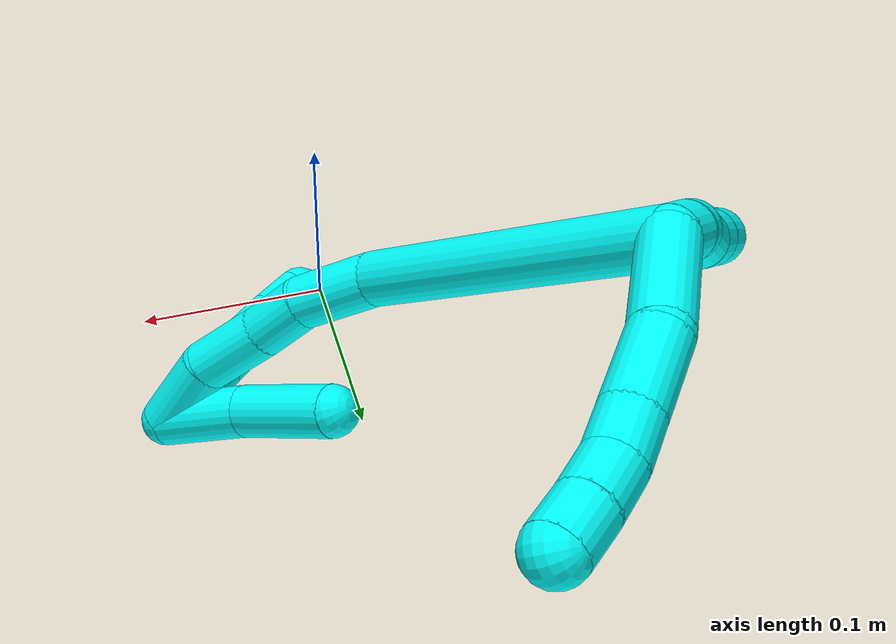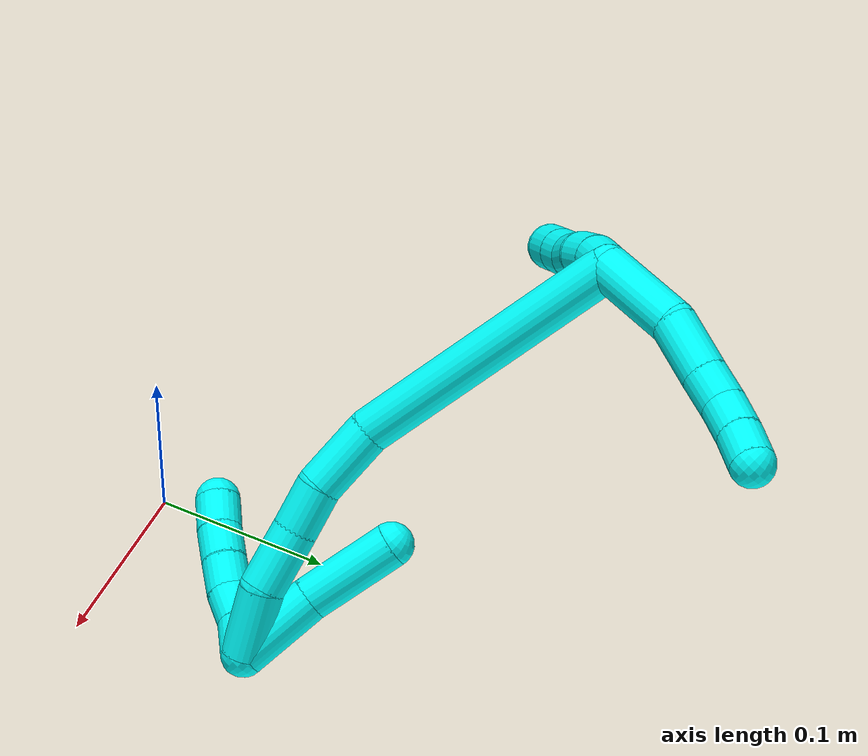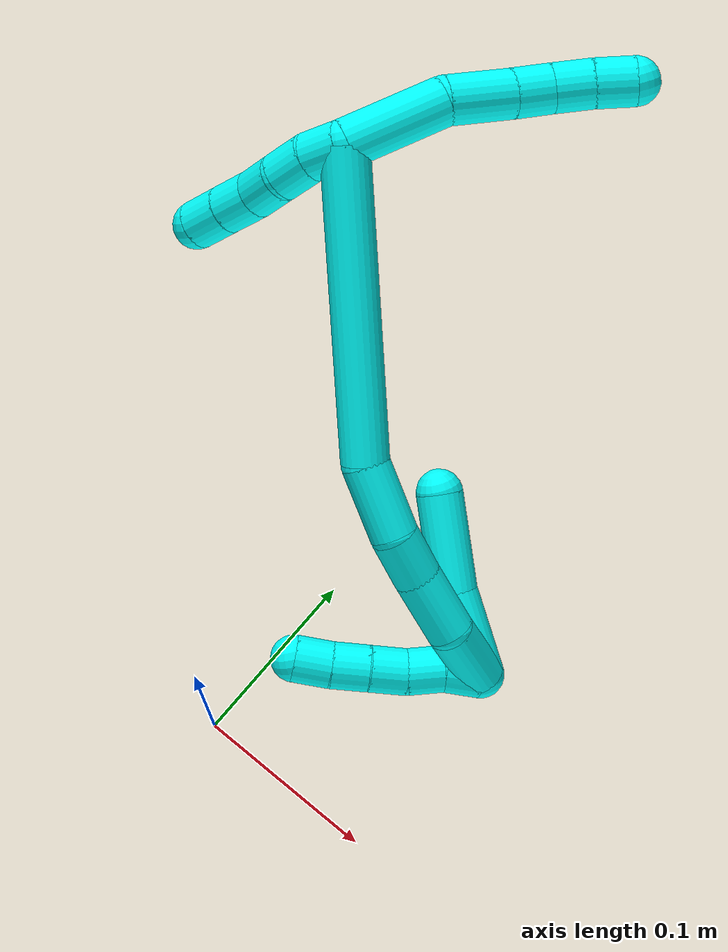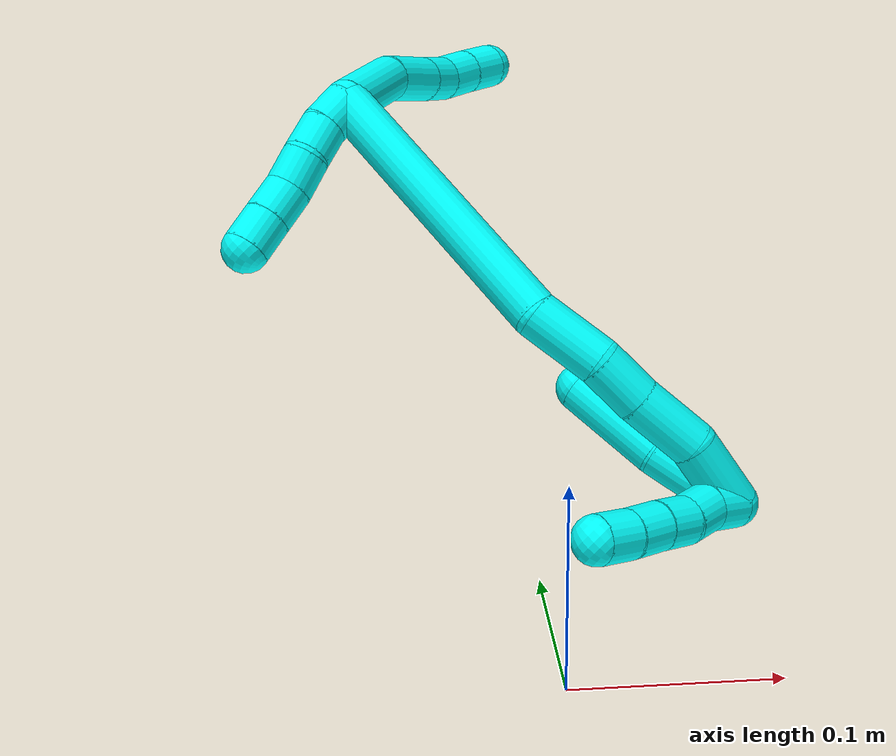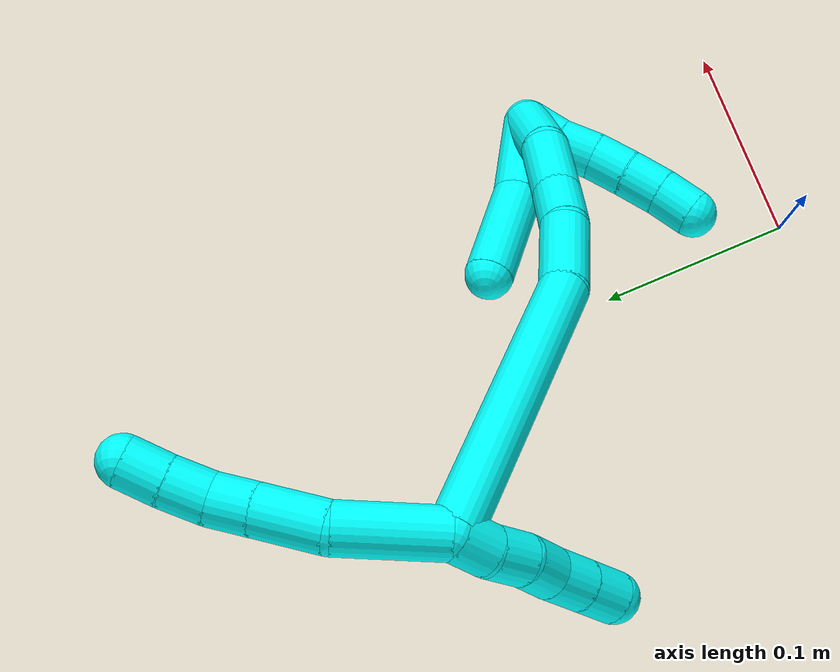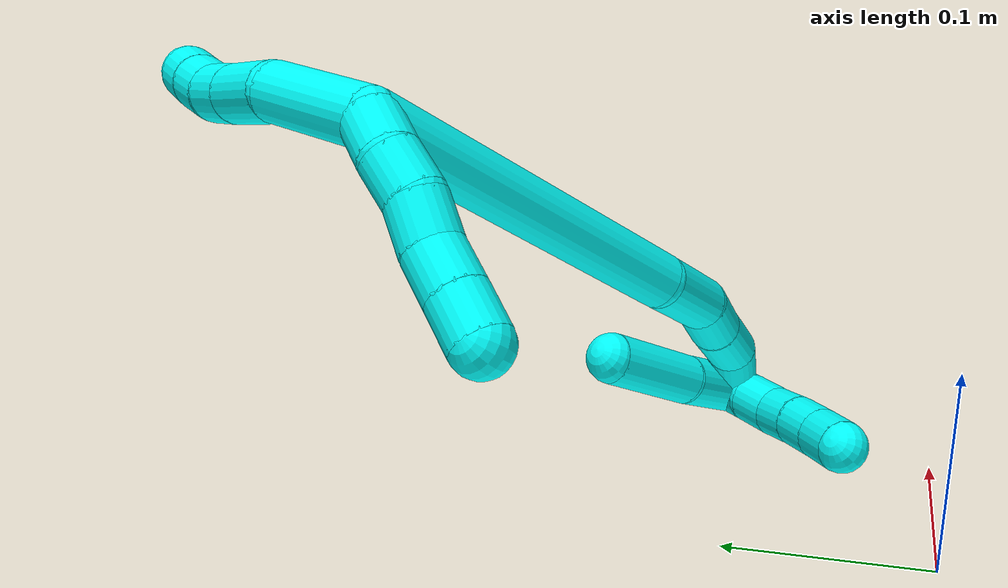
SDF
<sdf version="1.7">
 <world name="default">
  <model name="3">
   <static>0</static>
   <link name="3">
    <collision name="collision-cylinder-e_1_2_8">
     <pose>0.003976 0.026149 0.003748 -1.42842 0.149403 -0.129574</pose>
     <geometry><cylinder><radius>0.0125</radius><length>0.053428</length></cylinder></geometry>
     <surface>
      <friction><ode><mu>1.16</mu><mu2>1.16</mu2><slip1>0</slip1><slip2>0</slip2></ode></friction>
      <contact><ode><kp>1e+06</kp><kd>1</kd><max_vel>0</max_vel><min_depth>0.001</min_depth></ode></contact>
     </surface>
    </collision>
    <visual name="visual-cylinder-e_1_2_8">
     <pose>0.003976 0.026149 0.003748 -1.42842 0.149403 -0.129574</pose>
     <geometry><cylinder><radius>0.0125</radius><length>0.053428</length></cylinder></geometry>
     <material><ambient>0.003922 1 0.996078 1</ambient></material>
    </visual>
    <collision name="collision-cylinder-e_2_8_9">
     <pose>0.009329 0.069138 0.004736 -1.73331 0.080477 -0.094726</pose>
     <geometry><cylinder><radius>0.0125</radius><length>0.034241</length></cylinder></geometry>
     <surface>
      <friction><ode><mu>1.16</mu><mu2>1.16</mu2><slip1>0</slip1><slip2>0</slip2></ode></friction>
      <contact><ode><kp>1e+06</kp><kd>1</kd><max_vel>0</max_vel><min_depth>0.001</min_depth></ode></contact>
     </surface>
    </collision>
    <visual name="visual-cylinder-e_2_8_9">
     <pose>0.009329 0.069138 0.004736 -1.73331 0.080477 -0.094726</pose>
     <geometry><cylinder><radius>0.0125</radius><length>0.034241</length></cylinder></geometry>
     <material><ambient>0.003922 1 0.996078 1</ambient></material>
    </visual>
    <collision name="collision-cylinder-e_3_9_10">
     <pose>0.011855 0.09611 0.000607 -1.70501 0.112023 -0.128125</pose>
     <geometry><cylinder><radius>0.0125</radius><length>0.020575</length></cylinder></geometry>
     <surface>
      <friction><ode><mu>1.16</mu><mu2>1.16</mu2><slip1>0</slip1><slip2>0</slip2></ode></friction>
      <contact><ode><kp>1e+06</kp><kd>1</kd><max_vel>0</max_vel><min_depth>0.001</min_depth></ode></contact>
     </surface>
    </collision>
    <visual name="visual-cylinder-e_3_9_10">
     <pose>0.011855 0.09611 0.000607 -1.70501 0.112023 -0.128125</pose>
     <geometry><cylinder><radius>0.0125</radius><length>0.020575</length></cylinder></geometry>
     <material><ambient>0.003922 1 0.996078 1</ambient></material>
    </visual>
    <collision name="collision-cylinder-e_4_10_11">
     <pose>0.01646 0.116116 -0.002083 -1.70385 0.333772 -0.38035</pose>
     <geometry><cylinder><radius>0.0125</radius><length>0.021089</length></cylinder></geometry>
     <surface>
      <friction><ode><mu>1.16</mu><mu2>1.16</mu2><slip1>0</slip1><slip2>0</slip2></ode></friction>
      <contact><ode><kp>1e+06</kp><kd>1</kd><max_vel>0</max_vel><min_depth>0.001</min_depth></ode></contact>
     </surface>
    </collision>
    <visual name="visual-cylinder-e_4_10_11">
     <pose>0.01646 0.116116 -0.002083 -1.70385 0.333772 -0.38035</pose>
     <geometry><cylinder><radius>0.0125</radius><length>0.021089</length></cylinder></geometry>
     <material><ambient>0.003922 1 0.996078 1</ambient></material>
    </visual>
    <collision name="collision-cylinder-e_5_11_6">
     <pose>0.023576 0.135468 -0.005287 -1.76692 0.362229 -0.438975</pose>
     <geometry><cylinder><radius>0.0125</radius><length>0.020667</length></cylinder></geometry>
     <surface>
      <friction><ode><mu>1.16</mu><mu2>1.16</mu2><slip1>0</slip1><slip2>0</slip2></ode></friction>
      <contact><ode><kp>1e+06</kp><kd>1</kd><max_vel>0</max_vel><min_depth>0.001</min_depth></ode></contact>
     </surface>
    </collision>
    <visual name="visual-cylinder-e_5_11_6">
     <pose>0.023576 0.135468 -0.005287 -1.76692 0.362229 -0.438975</pose>
     <geometry><cylinder><radius>0.0125</radius><length>0.020667</length></cylinder></geometry>
     <material><ambient>0.003922 1 0.996078 1</ambient></material>
    </visual>
    <collision name="collision-cylinder-e_1_2_12">
     <pose>-0.006848 -0.007122 -0.001543 1.78417 -0.754361 -0.91312</pose>
     <geometry><cylinder><radius>0.0125</radius><length>0.02</length></cylinder></geometry>
     <surface>
      <friction><ode><mu>1.16</mu><mu2>1.16</mu2><slip1>0</slip1><slip2>0</slip2></ode></friction>
      <contact><ode><kp>1e+06</kp><kd>1</kd><max_vel>0</max_vel><min_depth>0.001</min_depth></ode></contact>
     </surface>
    </collision>
    <visual name="visual-cylinder-e_1_2_12">
     <pose>-0.006848 -0.007122 -0.001543 1.78417 -0.754361 -0.91312</pose>
     <geometry><cylinder><radius>0.0125</radius><length>0.02</length></cylinder></geometry>
     <material><ambient>0.003922 1 0.996078 1</ambient></material>
    </visual>
    <collision name="collision-cylinder-e_2_12_13">
     <pose>-0.02019 -0.021023 -0.006532 2.04101 -0.706763 -1.08266</pose>
     <geometry><cylinder><radius>0.0125</radius><length>0.02</length></cylinder></geometry>
     <surface>
      <friction><ode><mu>1.16</mu><mu2>1.16</mu2><slip1>0</slip1><slip2>0</slip2></ode></friction>
      <contact><ode><kp>1e+06</kp><kd>1</kd><max_vel>0</max_vel><min_depth>0.001</min_depth></ode></contact>
     </surface>
    </collision>
    <visual name="visual-cylinder-e_2_12_13">
     <pose>-0.02019 -0.021023 -0.006532 2.04101 -0.706763 -1.08266</pose>
     <geometry><cylinder><radius>0.0125</radius><length>0.02</length></cylinder></geometry>
     <material><ambient>0.003922 1 0.996078 1</ambient></material>
    </visual>
    <collision name="collision-cylinder-e_3_13_14">
     <pose>-0.034655 -0.032816 -0.013342 2.16189 -0.922463 -1.50052</pose>
     <geometry><cylinder><radius>0.0125</radius><length>0.02</length></cylinder></geometry>
     <surface>
      <friction><ode><mu>1.16</mu><mu2>1.16</mu2><slip1>0</slip1><slip2>0</slip2></ode></friction>
      <contact><ode><kp>1e+06</kp><kd>1</kd><max_vel>0</max_vel><min_depth>0.001</min_depth></ode></contact>
     </surface>
    </collision>
    <visual name="visual-cylinder-e_3_13_14">
     <pose>-0.034655 -0.032816 -0.013342 2.16189 -0.922463 -1.50052</pose>
     <geometry><cylinder><radius>0.0125</radius><length>0.02</length></cylinder></geometry>
     <material><ambient>0.003922 1 0.996078 1</ambient></material>
    </visual>
    <collision name="collision-cylinder-e_4_14_15">
     <pose>-0.049539 -0.044562 -0.019333 1.94266 -0.763334 -1.06208</pose>
     <geometry><cylinder><radius>0.0125</radius><length>0.02</length></cylinder></geometry>
     <surface>
      <friction><ode><mu>1.16</mu><mu2>1.16</mu2><slip1>0</slip1><slip2>0</slip2></ode></friction>
      <contact><ode><kp>1e+06</kp><kd>1</kd><max_vel>0</max_vel><min_depth>0.001</min_depth></ode></contact>
     </surface>
    </collision>
    <visual name="visual-cylinder-e_4_14_15">
     <pose>-0.049539 -0.044562 -0.019333 1.94266 -0.763334 -1.06208</pose>
     <geometry><cylinder><radius>0.0125</radius><length>0.02</length></cylinder></geometry>
     <material><ambient>0.003922 1 0.996078 1</ambient></material>
    </visual>
    <collision name="collision-cylinder-e_5_15_5">
     <pose>-0.063448 -0.057916 -0.024643 1.95595 -0.77474 -1.0891</pose>
     <geometry><cylinder><radius>0.0125</radius><length>0.02</length></cylinder></geometry>
     <surface>
      <friction><ode><mu>1.16</mu><mu2>1.16</mu2><slip1>0</slip1><slip2>0</slip2></ode></friction>
      <contact><ode><kp>1e+06</kp><kd>1</kd><max_vel>0</max_vel><min_depth>0.001</min_depth></ode></contact>
     </surface>
    </collision>
    <visual name="visual-cylinder-e_5_15_5">
     <pose>-0.063448 -0.057916 -0.024643 1.95595 -0.77474 -1.0891</pose>
     <geometry><cylinder><radius>0.0125</radius><length>0.02</length></cylinder></geometry>
     <material><ambient>0.003922 1 0.996078 1</ambient></material>
    </visual>
    <collision name="collision-cylinder-e_1_2_16">
     <pose>0.0013 -0.015516 -0.077133 2.94308 0.016515 0.165468</pose>
     <geometry><cylinder><radius>0.0125</radius><length>0.157378</length></cylinder></geometry>
     <surface>
      <friction><ode><mu>1.16</mu><mu2>1.16</mu2><slip1>0</slip1><slip2>0</slip2></ode></friction>
      <contact><ode><kp>1e+06</kp><kd>1</kd><max_vel>0</max_vel><min_depth>0.001</min_depth></ode></contact>
     </surface>
    </collision>
    <visual name="visual-cylinder-e_1_2_16">
     <pose>0.0013 -0.015516 -0.077133 2.94308 0.016515 0.165468</pose>
     <geometry><cylinder><radius>0.0125</radius><length>0.157378</length></cylinder></geometry>
     <material><ambient>0.003922 1 0.996078 1</ambient></material>
    </visual>
    <collision name="collision-cylinder-e_2_16_17">
     <pose>0.00494 -0.029118 -0.17384 -3.0441 0.118479 -1.76487</pose>
     <geometry><cylinder><radius>0.0125</radius><length>0.039613</length></cylinder></geometry>
     <surface>
      <friction><ode><mu>1.16</mu><mu2>1.16</mu2><slip1>0</slip1><slip2>0</slip2></ode></friction>
      <contact><ode><kp>1e+06</kp><kd>1</kd><max_vel>0</max_vel><min_depth>0.001</min_depth></ode></contact>
     </surface>
    </collision>
    <visual name="visual-cylinder-e_2_16_17">
     <pose>0.00494 -0.029118 -0.17384 -3.0441 0.118479 -1.76487</pose>
     <geometry><cylinder><radius>0.0125</radius><length>0.039613</length></cylinder></geometry>
     <material><ambient>0.003922 1 0.996078 1</ambient></material>
    </visual>
    <collision name="collision-cylinder-e_3_17_18">
     <pose>0.006109 -0.02375 -0.206505 -2.88365 -0.086381 0.64331</pose>
     <geometry><cylinder><radius>0.0125</radius><length>0.02718</length></cylinder></geometry>
     <surface>
      <friction><ode><mu>1.16</mu><mu2>1.16</mu2><slip1>0</slip1><slip2>0</slip2></ode></friction>
      <contact><ode><kp>1e+06</kp><kd>1</kd><max_vel>0</max_vel><min_depth>0.001</min_depth></ode></contact>
     </surface>
    </collision>
    <visual name="visual-cylinder-e_3_17_18">
     <pose>0.006109 -0.02375 -0.206505 -2.88365 -0.086381 0.64331</pose>
     <geometry><cylinder><radius>0.0125</radius><length>0.02718</length></cylinder></geometry>
     <material><ambient>0.003922 1 0.996078 1</ambient></material>
    </visual>
    <collision name="collision-cylinder-e_4_18_19">
     <pose>0.004921 -0.015252 -0.236982 -2.85922 -0.000825 0.005801</pose>
     <geometry><cylinder><radius>0.0125</radius><length>0.036203</length></cylinder></geometry>
     <surface>
      <friction><ode><mu>1.16</mu><mu2>1.16</mu2><slip1>0</slip1><slip2>0</slip2></ode></friction>
      <contact><ode><kp>1e+06</kp><kd>1</kd><max_vel>0</max_vel><min_depth>0.001</min_depth></ode></contact>
     </surface>
    </collision>
    <visual name="visual-cylinder-e_4_18_19">
     <pose>0.004921 -0.015252 -0.236982 -2.85922 -0.000825 0.005801</pose>
     <geometry><cylinder><radius>0.0125</radius><length>0.036203</length></cylinder></geometry>
     <material><ambient>0.003922 1 0.996078 1</ambient></material>
    </visual>
    <collision name="collision-cylinder-e_5_19_1">
     <pose>-0.001141 -0.003112 -0.271849 -2.75599 -0.310157 1.35043</pose>
     <geometry><cylinder><radius>0.0125</radius><length>0.039626</length></cylinder></geometry>
     <surface>
      <friction><ode><mu>1.16</mu><mu2>1.16</mu2><slip1>0</slip1><slip2>0</slip2></ode></friction>
      <contact><ode><kp>1e+06</kp><kd>1</kd><max_vel>0</max_vel><min_depth>0.001</min_depth></ode></contact>
     </surface>
    </collision>
    <visual name="visual-cylinder-e_5_19_1">
     <pose>-0.001141 -0.003112 -0.271849 -2.75599 -0.310157 1.35043</pose>
     <geometry><cylinder><radius>0.0125</radius><length>0.039626</length></cylinder></geometry>
     <material><ambient>0.003922 1 0.996078 1</ambient></material>
    </visual>
    <collision name="collision-cylinder-e_1_1_20">
     <pose>-0.012352 0.004081 -0.266505 -0.004214 -0.222508 0.000471</pose>
     <geometry><cylinder><radius>0.0125</radius><length>0.046806</length></cylinder></geometry>
     <surface>
      <friction><ode><mu>1.16</mu><mu2>1.16</mu2><slip1>0</slip1><slip2>0</slip2></ode></friction>
      <contact><ode><kp>1e+06</kp><kd>1</kd><max_vel>0</max_vel><min_depth>0.001</min_depth></ode></contact>
     </surface>
    </collision>
    <visual name="visual-cylinder-e_1_1_20">
     <pose>-0.012352 0.004081 -0.266505 -0.004214 -0.222508 0.000471</pose>
     <geometry><cylinder><radius>0.0125</radius><length>0.046806</length></cylinder></geometry>
     <material><ambient>0.003922 1 0.996078 1</ambient></material>
    </visual>
    <collision name="collision-cylinder-e_2_20_4">
     <pose>-0.021698 0.008242 -0.21773 -0.1554 -0.15787 0.012317</pose>
     <geometry><cylinder><radius>0.0125</radius><length>0.053194</length></cylinder></geometry>
     <surface>
      <friction><ode><mu>1.16</mu><mu2>1.16</mu2><slip1>0</slip1><slip2>0</slip2></ode></friction>
      <contact><ode><kp>1e+06</kp><kd>1</kd><max_vel>0</max_vel><min_depth>0.001</min_depth></ode></contact>
     </surface>
    </collision>
    <visual name="visual-cylinder-e_2_20_4">
     <pose>-0.021698 0.008242 -0.21773 -0.1554 -0.15787 0.012317</pose>
     <geometry><cylinder><radius>0.0125</radius><length>0.053194</length></cylinder></geometry>
     <material><ambient>0.003922 1 0.996078 1</ambient></material>
    </visual>
    <collision name="collision-cylinder-e_1_1_21">
     <pose>-0.009825 -0.004667 -0.285066 1.11277 -0.2669 -0.166597</pose>
     <geometry><cylinder><radius>0.0125</radius><length>0.02</length></cylinder></geometry>
     <surface>
      <friction><ode><mu>1.16</mu><mu2>1.16</mu2><slip1>0</slip1><slip2>0</slip2></ode></friction>
      <contact><ode><kp>1e+06</kp><kd>1</kd><max_vel>0</max_vel><min_depth>0.001</min_depth></ode></contact>
     </surface>
    </collision>
    <visual name="visual-cylinder-e_1_1_21">
     <pose>-0.009825 -0.004667 -0.285066 1.11277 -0.2669 -0.166597</pose>
     <geometry><cylinder><radius>0.0125</radius><length>0.02</length></cylinder></geometry>
     <material><ambient>0.003922 1 0.996078 1</ambient></material>
    </visual>
    <collision name="collision-cylinder-e_2_21_22">
     <pose>-0.015351 -0.022734 -0.279068 1.38886 -0.293058 -0.244598</pose>
     <geometry><cylinder><radius>0.0125</radius><length>0.02</length></cylinder></geometry>
     <surface>
      <friction><ode><mu>1.16</mu><mu2>1.16</mu2><slip1>0</slip1><slip2>0</slip2></ode></friction>
      <contact><ode><kp>1e+06</kp><kd>1</kd><max_vel>0</max_vel><min_depth>0.001</min_depth></ode></contact>
     </surface>
    </collision>
    <visual name="visual-cylinder-e_2_21_22">
     <pose>-0.015351 -0.022734 -0.279068 1.38886 -0.293058 -0.244598</pose>
     <geometry><cylinder><radius>0.0125</radius><length>0.02</length></cylinder></geometry>
     <material><ambient>0.003922 1 0.996078 1</ambient></material>
    </visual>
    <collision name="collision-cylinder-e_3_22_23">
     <pose>-0.020594 -0.041119 -0.273593 1.17543 -0.237568 -0.158695</pose>
     <geometry><cylinder><radius>0.0125</radius><length>0.02</length></cylinder></geometry>
     <surface>
      <friction><ode><mu>1.16</mu><mu2>1.16</mu2><slip1>0</slip1><slip2>0</slip2></ode></friction>
      <contact><ode><kp>1e+06</kp><kd>1</kd><max_vel>0</max_vel><min_depth>0.001</min_depth></ode></contact>
     </surface>
    </collision>
    <visual name="visual-cylinder-e_3_22_23">
     <pose>-0.020594 -0.041119 -0.273593 1.17543 -0.237568 -0.158695</pose>
     <geometry><cylinder><radius>0.0125</radius><length>0.02</length></cylinder></geometry>
     <material><ambient>0.003922 1 0.996078 1</ambient></material>
    </visual>
    <collision name="collision-cylinder-e_4_23_24">
     <pose>-0.025899 -0.05897 -0.266327 1.1932 -0.299679 -0.204352</pose>
     <geometry><cylinder><radius>0.0125</radius><length>0.02</length></cylinder></geometry>
     <surface>
      <friction><ode><mu>1.16</mu><mu2>1.16</mu2><slip1>0</slip1><slip2>0</slip2></ode></friction>
      <contact><ode><kp>1e+06</kp><kd>1</kd><max_vel>0</max_vel><min_depth>0.001</min_depth></ode></contact>
     </surface>
    </collision>
    <visual name="visual-cylinder-e_4_23_24">
     <pose>-0.025899 -0.05897 -0.266327 1.1932 -0.299679 -0.204352</pose>
     <geometry><cylinder><radius>0.0125</radius><length>0.02</length></cylinder></geometry>
     <material><ambient>0.003922 1 0.996078 1</ambient></material>
    </visual>
    <collision name="collision-cylinder-e_5_24_3">
     <pose>-0.031932 -0.076348 -0.258526 1.10427 -0.313208 -0.193933</pose>
     <geometry><cylinder><radius>0.0125</radius><length>0.02</length></cylinder></geometry>
     <surface>
      <friction><ode><mu>1.16</mu><mu2>1.16</mu2><slip1>0</slip1><slip2>0</slip2></ode></friction>
      <contact><ode><kp>1e+06</kp><kd>1</kd><max_vel>0</max_vel><min_depth>0.001</min_depth></ode></contact>
     </surface>
    </collision>
    <visual name="visual-cylinder-e_5_24_3">
     <pose>-0.031932 -0.076348 -0.258526 1.10427 -0.313208 -0.193933</pose>
     <geometry><cylinder><radius>0.0125</radius><length>0.02</length></cylinder></geometry>
     <material><ambient>0.003922 1 0.996078 1</ambient></material>
    </visual>
    <collision name="collision-sphere-3">
     <pose>-0.035014 -0.084845 -0.254246 0 -0 0</pose>
     <geometry><sphere><radius>0.0125</radius></sphere></geometry>
     <surface>
      <friction><ode><mu>1.16</mu><mu2>1.16</mu2><slip1>0</slip1><slip2>0</slip2></ode></friction>
      <contact><ode><kp>1e+06</kp><kd>1</kd><max_vel>0</max_vel><min_depth>0.001</min_depth></ode></contact>
     </surface>
    </collision>
    <visual name="visual-sphere-3">
     <pose>-0.035014 -0.084845 -0.254246 0 -0 0</pose>
     <geometry><sphere><radius>0.0125</radius></sphere></geometry>
     <material><ambient>0.003922 1 0.996078 1</ambient></material>
    </visual>
    <collision name="collision-sphere-24">
     <pose>-0.028851 -0.067851 -0.262805 0 -0 0</pose>
     <geometry><sphere><radius>0.0125</radius></sphere></geometry>
     <surface>
      <friction><ode><mu>1.16</mu><mu2>1.16</mu2><slip1>0</slip1><slip2>0</slip2></ode></friction>
      <contact><ode><kp>1e+06</kp><kd>1</kd><max_vel>0</max_vel><min_depth>0.001</min_depth></ode></contact>
     </surface>
    </collision>
    <visual name="visual-sphere-24">
     <pose>-0.028851 -0.067851 -0.262805 0 -0 0</pose>
     <geometry><sphere><radius>0.0125</radius></sphere></geometry>
     <material><ambient>0.003922 1 0.996078 1</ambient></material>
    </visual>
    <collision name="collision-sphere-23">
     <pose>-0.022947 -0.050089 -0.26985 0 -0 0</pose>
     <geometry><sphere><radius>0.0125</radius></sphere></geometry>
     <surface>
      <friction><ode><mu>1.16</mu><mu2>1.16</mu2><slip1>0</slip1><slip2>0</slip2></ode></friction>
      <contact><ode><kp>1e+06</kp><kd>1</kd><max_vel>0</max_vel><min_depth>0.001</min_depth></ode></contact>
     </surface>
    </collision>
    <visual name="visual-sphere-23">
     <pose>-0.022947 -0.050089 -0.26985 0 -0 0</pose>
     <geometry><sphere><radius>0.0125</radius></sphere></geometry>
     <material><ambient>0.003922 1 0.996078 1</ambient></material>
    </visual>
    <collision name="collision-sphere-22">
     <pose>-0.01824 -0.03215 -0.277336 0 -0 0</pose>
     <geometry><sphere><radius>0.0125</radius></sphere></geometry>
     <surface>
      <friction><ode><mu>1.16</mu><mu2>1.16</mu2><slip1>0</slip1><slip2>0</slip2></ode></friction>
      <contact><ode><kp>1e+06</kp><kd>1</kd><max_vel>0</max_vel><min_depth>0.001</min_depth></ode></contact>
     </surface>
    </collision>
    <visual name="visual-sphere-22">
     <pose>-0.01824 -0.03215 -0.277336 0 -0 0</pose>
     <geometry><sphere><radius>0.0125</radius></sphere></geometry>
     <material><ambient>0.003922 1 0.996078 1</ambient></material>
    </visual>
    <collision name="collision-sphere-21">
     <pose>-0.012463 -0.013319 -0.280801 0 -0 0</pose>
     <geometry><sphere><radius>0.0125</radius></sphere></geometry>
     <surface>
      <friction><ode><mu>1.16</mu><mu2>1.16</mu2><slip1>0</slip1><slip2>0</slip2></ode></friction>
      <contact><ode><kp>1e+06</kp><kd>1</kd><max_vel>0</max_vel><min_depth>0.001</min_depth></ode></contact>
     </surface>
    </collision>
    <visual name="visual-sphere-21">
     <pose>-0.012463 -0.013319 -0.280801 0 -0 0</pose>
     <geometry><sphere><radius>0.0125</radius></sphere></geometry>
     <material><ambient>0.003922 1 0.996078 1</ambient></material>
    </visual>
    <collision name="collision-sphere-4">
     <pose>-0.02588 0.012308 -0.19178 0 -0 0</pose>
     <geometry><sphere><radius>0.0125</radius></sphere></geometry>
     <surface>
      <friction><ode><mu>1.16</mu><mu2>1.16</mu2><slip1>0</slip1><slip2>0</slip2></ode></friction>
      <contact><ode><kp>1e+06</kp><kd>1</kd><max_vel>0</max_vel><min_depth>0.001</min_depth></ode></contact>
     </surface>
    </collision>
    <visual name="visual-sphere-4">
     <pose>-0.02588 0.012308 -0.19178 0 -0 0</pose>
     <geometry><sphere><radius>0.0125</radius></sphere></geometry>
     <material><ambient>0.003922 1 0.996078 1</ambient></material>
    </visual>
    <collision name="collision-sphere-20">
     <pose>-0.017517 0.004177 -0.24368 0 -0 0</pose>
     <geometry><sphere><radius>0.0125</radius></sphere></geometry>
     <surface>
      <friction><ode><mu>1.16</mu><mu2>1.16</mu2><slip1>0</slip1><slip2>0</slip2></ode></friction>
      <contact><ode><kp>1e+06</kp><kd>1</kd><max_vel>0</max_vel><min_depth>0.001</min_depth></ode></contact>
     </surface>
    </collision>
    <visual name="visual-sphere-20">
     <pose>-0.017517 0.004177 -0.24368 0 -0 0</pose>
     <geometry><sphere><radius>0.0125</radius></sphere></geometry>
     <material><ambient>0.003922 1 0.996078 1</ambient></material>
    </visual>
    <collision name="collision-sphere-6">
     <pose>0.027238 0.144945 -0.00717 0 -0 0</pose>
     <geometry><sphere><radius>0.0125</radius></sphere></geometry>
     <surface>
      <friction><ode><mu>1.16</mu><mu2>1.16</mu2><slip1>0</slip1><slip2>0</slip2></ode></friction>
      <contact><ode><kp>1e+06</kp><kd>1</kd><max_vel>0</max_vel><min_depth>0.001</min_depth></ode></contact>
     </surface>
    </collision>
    <visual name="visual-sphere-6">
     <pose>0.027238 0.144945 -0.00717 0 -0 0</pose>
     <geometry><sphere><radius>0.0125</radius></sphere></geometry>
     <material><ambient>0.003922 1 0.996078 1</ambient></material>
    </visual>
    <collision name="collision-sphere-11">
     <pose>0.019914 0.12599 -0.003405 0 -0 0</pose>
     <geometry><sphere><radius>0.0125</radius></sphere></geometry>
     <surface>
      <friction><ode><mu>1.16</mu><mu2>1.16</mu2><slip1>0</slip1><slip2>0</slip2></ode></friction>
      <contact><ode><kp>1e+06</kp><kd>1</kd><max_vel>0</max_vel><min_depth>0.001</min_depth></ode></contact>
     </surface>
    </collision>
    <visual name="visual-sphere-11">
     <pose>0.019914 0.12599 -0.003405 0 -0 0</pose>
     <geometry><sphere><radius>0.0125</radius></sphere></geometry>
     <material><ambient>0.003922 1 0.996078 1</ambient></material>
    </visual>
    <collision name="collision-sphere-10">
     <pose>0.013005 0.106241 -0.000761 0 -0 0</pose>
     <geometry><sphere><radius>0.0125</radius></sphere></geometry>
     <surface>
      <friction><ode><mu>1.16</mu><mu2>1.16</mu2><slip1>0</slip1><slip2>0</slip2></ode></friction>
      <contact><ode><kp>1e+06</kp><kd>1</kd><max_vel>0</max_vel><min_depth>0.001</min_depth></ode></contact>
     </surface>
    </collision>
    <visual name="visual-sphere-10">
     <pose>0.013005 0.106241 -0.000761 0 -0 0</pose>
     <geometry><sphere><radius>0.0125</radius></sphere></geometry>
     <material><ambient>0.003922 1 0.996078 1</ambient></material>
    </visual>
    <collision name="collision-sphere-9">
     <pose>0.010705 0.085979 0.001975 0 -0 0</pose>
     <geometry><sphere><radius>0.0125</radius></sphere></geometry>
     <surface>
      <friction><ode><mu>1.16</mu><mu2>1.16</mu2><slip1>0</slip1><slip2>0</slip2></ode></friction>
      <contact><ode><kp>1e+06</kp><kd>1</kd><max_vel>0</max_vel><min_depth>0.001</min_depth></ode></contact>
     </surface>
    </collision>
    <visual name="visual-sphere-9">
     <pose>0.010705 0.085979 0.001975 0 -0 0</pose>
     <geometry><sphere><radius>0.0125</radius></sphere></geometry>
     <material><ambient>0.003922 1 0.996078 1</ambient></material>
    </visual>
    <collision name="collision-sphere-2">
     <geometry><sphere><radius>0.0125</radius></sphere></geometry>
     <surface>
      <friction><ode><mu>1.16</mu><mu2>1.16</mu2><slip1>0</slip1><slip2>0</slip2></ode></friction>
      <contact><ode><kp>1e+06</kp><kd>1</kd><max_vel>0</max_vel><min_depth>0.001</min_depth></ode></contact>
     </surface>
    </collision>
    <visual name="visual-sphere-2">
     <geometry><sphere><radius>0.0125</radius></sphere></geometry>
     <material><ambient>0.003922 1 0.996078 1</ambient></material>
    </visual>
    <collision name="collision-sphere-19">
     <pose>0.004907 -0.010208 -0.254366 0 -0 0</pose>
     <geometry><sphere><radius>0.0125</radius></sphere></geometry>
     <surface>
      <friction><ode><mu>1.16</mu><mu2>1.16</mu2><slip1>0</slip1><slip2>0</slip2></ode></friction>
      <contact><ode><kp>1e+06</kp><kd>1</kd><max_vel>0</max_vel><min_depth>0.001</min_depth></ode></contact>
     </surface>
    </collision>
    <visual name="visual-sphere-19">
     <pose>0.004907 -0.010208 -0.254366 0 -0 0</pose>
     <geometry><sphere><radius>0.0125</radius></sphere></geometry>
     <material><ambient>0.003922 1 0.996078 1</ambient></material>
    </visual>
    <collision name="collision-sphere-8">
     <pose>0.007953 0.052298 0.007497 0 -0 0</pose>
     <geometry><sphere><radius>0.0125</radius></sphere></geometry>
     <surface>
      <friction><ode><mu>1.16</mu><mu2>1.16</mu2><slip1>0</slip1><slip2>0</slip2></ode></friction>
      <contact><ode><kp>1e+06</kp><kd>1</kd><max_vel>0</max_vel><min_depth>0.001</min_depth></ode></contact>
     </surface>
    </collision>
    <visual name="visual-sphere-8">
     <pose>0.007953 0.052298 0.007497 0 -0 0</pose>
     <geometry><sphere><radius>0.0125</radius></sphere></geometry>
     <material><ambient>0.003922 1 0.996078 1</ambient></material>
    </visual>
    <collision name="collision-sphere-12">
     <pose>-0.013696 -0.014244 -0.003086 0 -0 0</pose>
     <geometry><sphere><radius>0.0125</radius></sphere></geometry>
     <surface>
      <friction><ode><mu>1.16</mu><mu2>1.16</mu2><slip1>0</slip1><slip2>0</slip2></ode></friction>
      <contact><ode><kp>1e+06</kp><kd>1</kd><max_vel>0</max_vel><min_depth>0.001</min_depth></ode></contact>
     </surface>
    </collision>
    <visual name="visual-sphere-12">
     <pose>-0.013696 -0.014244 -0.003086 0 -0 0</pose>
     <geometry><sphere><radius>0.0125</radius></sphere></geometry>
     <material><ambient>0.003922 1 0.996078 1</ambient></material>
    </visual>
    <collision name="collision-sphere-13">
     <pose>-0.026684 -0.027802 -0.009977 0 -0 0</pose>
     <geometry><sphere><radius>0.0125</radius></sphere></geometry>
     <surface>
      <friction><ode><mu>1.16</mu><mu2>1.16</mu2><slip1>0</slip1><slip2>0</slip2></ode></friction>
      <contact><ode><kp>1e+06</kp><kd>1</kd><max_vel>0</max_vel><min_depth>0.001</min_depth></ode></contact>
     </surface>
    </collision>
    <visual name="visual-sphere-13">
     <pose>-0.026684 -0.027802 -0.009977 0 -0 0</pose>
     <geometry><sphere><radius>0.0125</radius></sphere></geometry>
     <material><ambient>0.003922 1 0.996078 1</ambient></material>
    </visual>
    <collision name="collision-sphere-14">
     <pose>-0.042626 -0.03783 -0.016707 0 -0 0</pose>
     <geometry><sphere><radius>0.0125</radius></sphere></geometry>
     <surface>
      <friction><ode><mu>1.16</mu><mu2>1.16</mu2><slip1>0</slip1><slip2>0</slip2></ode></friction>
      <contact><ode><kp>1e+06</kp><kd>1</kd><max_vel>0</max_vel><min_depth>0.001</min_depth></ode></contact>
     </surface>
    </collision>
    <visual name="visual-sphere-14">
     <pose>-0.042626 -0.03783 -0.016707 0 -0 0</pose>
     <geometry><sphere><radius>0.0125</radius></sphere></geometry>
     <material><ambient>0.003922 1 0.996078 1</ambient></material>
    </visual>
    <collision name="collision-sphere-15">
     <pose>-0.056452 -0.051293 -0.021958 0 -0 0</pose>
     <geometry><sphere><radius>0.0125</radius></sphere></geometry>
     <surface>
      <friction><ode><mu>1.16</mu><mu2>1.16</mu2><slip1>0</slip1><slip2>0</slip2></ode></friction>
      <contact><ode><kp>1e+06</kp><kd>1</kd><max_vel>0</max_vel><min_depth>0.001</min_depth></ode></contact>
     </surface>
    </collision>
    <visual name="visual-sphere-15">
     <pose>-0.056452 -0.051293 -0.021958 0 -0 0</pose>
     <geometry><sphere><radius>0.0125</radius></sphere></geometry>
     <material><ambient>0.003922 1 0.996078 1</ambient></material>
    </visual>
    <collision name="collision-sphere-5">
     <pose>-0.070443 -0.064539 -0.027328 0 -0 0</pose>
     <geometry><sphere><radius>0.0125</radius></sphere></geometry>
     <surface>
      <friction><ode><mu>1.16</mu><mu2>1.16</mu2><slip1>0</slip1><slip2>0</slip2></ode></friction>
      <contact><ode><kp>1e+06</kp><kd>1</kd><max_vel>0</max_vel><min_depth>0.001</min_depth></ode></contact>
     </surface>
    </collision>
    <visual name="visual-sphere-5">
     <pose>-0.070443 -0.064539 -0.027328 0 -0 0</pose>
     <geometry><sphere><radius>0.0125</radius></sphere></geometry>
     <material><ambient>0.003922 1 0.996078 1</ambient></material>
    </visual>
    <collision name="collision-sphere-16">
     <pose>0.002599 -0.031033 -0.154266 0 -0 0</pose>
     <geometry><sphere><radius>0.0125</radius></sphere></geometry>
     <surface>
      <friction><ode><mu>1.16</mu><mu2>1.16</mu2><slip1>0</slip1><slip2>0</slip2></ode></friction>
      <contact><ode><kp>1e+06</kp><kd>1</kd><max_vel>0</max_vel><min_depth>0.001</min_depth></ode></contact>
     </surface>
    </collision>
    <visual name="visual-sphere-16">
     <pose>0.002599 -0.031033 -0.154266 0 -0 0</pose>
     <geometry><sphere><radius>0.0125</radius></sphere></geometry>
     <material><ambient>0.003922 1 0.996078 1</ambient></material>
    </visual>
    <collision name="collision-sphere-17">
     <pose>0.007281 -0.027204 -0.193414 0 -0 0</pose>
     <geometry><sphere><radius>0.0125</radius></sphere></geometry>
     <surface>
      <friction><ode><mu>1.16</mu><mu2>1.16</mu2><slip1>0</slip1><slip2>0</slip2></ode></friction>
      <contact><ode><kp>1e+06</kp><kd>1</kd><max_vel>0</max_vel><min_depth>0.001</min_depth></ode></contact>
     </surface>
    </collision>
    <visual name="visual-sphere-17">
     <pose>0.007281 -0.027204 -0.193414 0 -0 0</pose>
     <geometry><sphere><radius>0.0125</radius></sphere></geometry>
     <material><ambient>0.003922 1 0.996078 1</ambient></material>
    </visual>
    <collision name="collision-sphere-18">
     <pose>0.004936 -0.020296 -0.219597 0 -0 0</pose>
     <geometry><sphere><radius>0.0125</radius></sphere></geometry>
     <surface>
      <friction><ode><mu>1.16</mu><mu2>1.16</mu2><slip1>0</slip1><slip2>0</slip2></ode></friction>
      <contact><ode><kp>1e+06</kp><kd>1</kd><max_vel>0</max_vel><min_depth>0.001</min_depth></ode></contact>
     </surface>
    </collision>
    <visual name="visual-sphere-18">
     <pose>0.004936 -0.020296 -0.219597 0 -0 0</pose>
     <geometry><sphere><radius>0.0125</radius></sphere></geometry>
     <material><ambient>0.003922 1 0.996078 1</ambient></material>
    </visual>
    <collision name="collision-sphere-1">
     <pose>-0.007188 0.003985 -0.289331 0 -0 0</pose>
     <geometry><sphere><radius>0.0125</radius></sphere></geometry>
     <surface>
      <friction><ode><mu>1.16</mu><mu2>1.16</mu2><slip1>0</slip1><slip2>0</slip2></ode></friction>
      <contact><ode><kp>1e+06</kp><kd>1</kd><max_vel>0</max_vel><min_depth>0.001</min_depth></ode></contact>
     </surface>
    </collision>
    <visual name="visual-sphere-1">
     <pose>-0.007188 0.003985 -0.289331 0 -0 0</pose>
     <geometry><sphere><radius>0.0125</radius></sphere></geometry>
     <material><ambient>0.003922 1 0.996078 1</ambient></material>
    </visual>
    <inertial>
     <pose>-0.006651 -0.000856 -0.128512 0 -0 0</pose>
     <mass>0.75</mass>
     <inertia>
      <ixx>0.00043</ixx>
      <ixy>0</ixy>
      <ixz>0</ixz>
      <iyy>-0.000247</iyy>
      <iyz>0</iyz>
      <izz>3.4e-05</izz>
     </inertia>
    </inertial>
   </link>
   <pose>-0.088756 0.226528 0.219884 -0.237231 -0.887021 -0.280201</pose>
  </model>
 </world>
</sdf>
